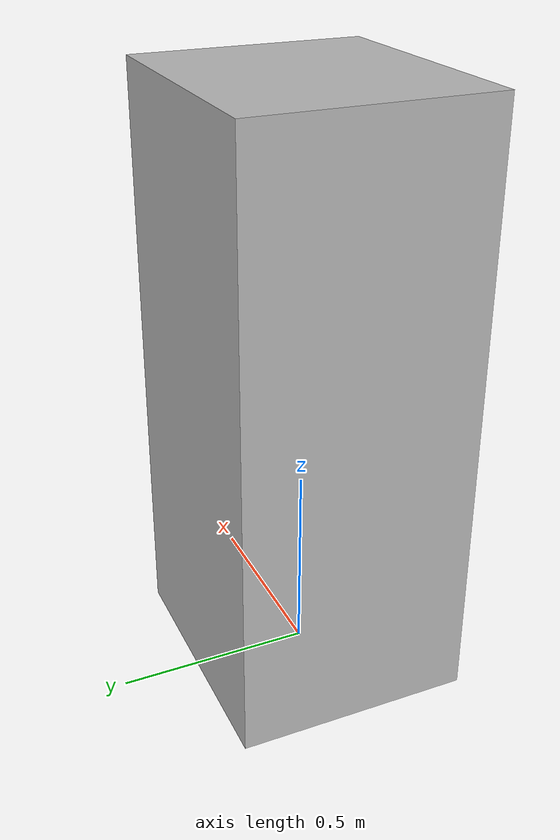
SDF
<?xml version="1.0"?>
<sdf version="1.6">
  <model name="reo2016/fridge">
    <link name="1_link">
      <collision name="1_col">
        <geometry>
          <box>
            <size>0.67 0.6 1.53</size>
          </box>
        </geometry>
      </collision>
      <visual name="1_vis">
        <geometry>
          <box>
            <size>0.67 0.6 1.53</size>
          </box>
        </geometry>
      </visual>
      <pose>0.0 0.0 0.765 0 0 0</pose>
    </link>
    <link name="on_top_of">
      <virtual_volume name="on_top_of_vv">
        <geometry>
          <box>
            <size>0.66 0.6 0.25</size>
          </box>
        </geometry>
        <pose>0.0 0.0 1.695 0 0 0</pose>
      </virtual_volume>
    </link>
    <link name="in_front_of">
      <virtual_volume name="in_front_of_vv">
        <geometry>
          <box>
            <size>0.2 0.4 0.01</size>
          </box>
        </geometry>
        <pose>-1.03 0.0 0.005 0 0 0</pose>
      </virtual_volume>
    </link>
    <static>true</static>
  </model>
</sdf>
